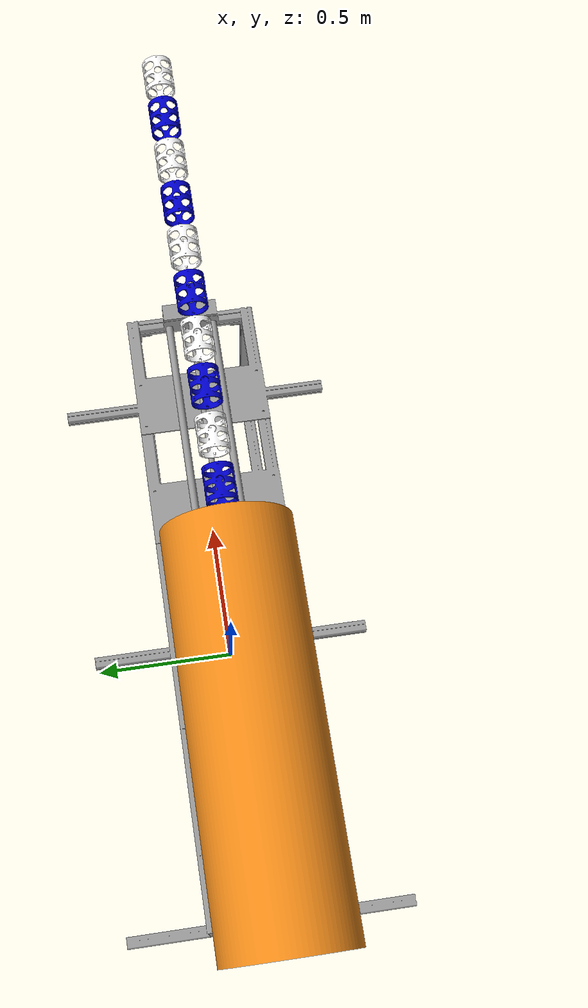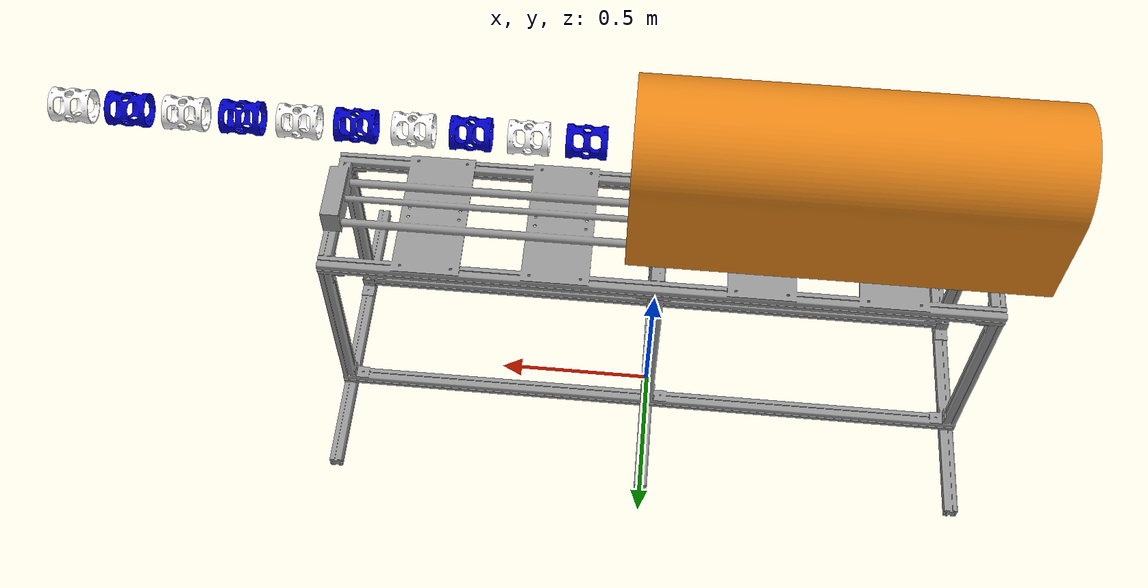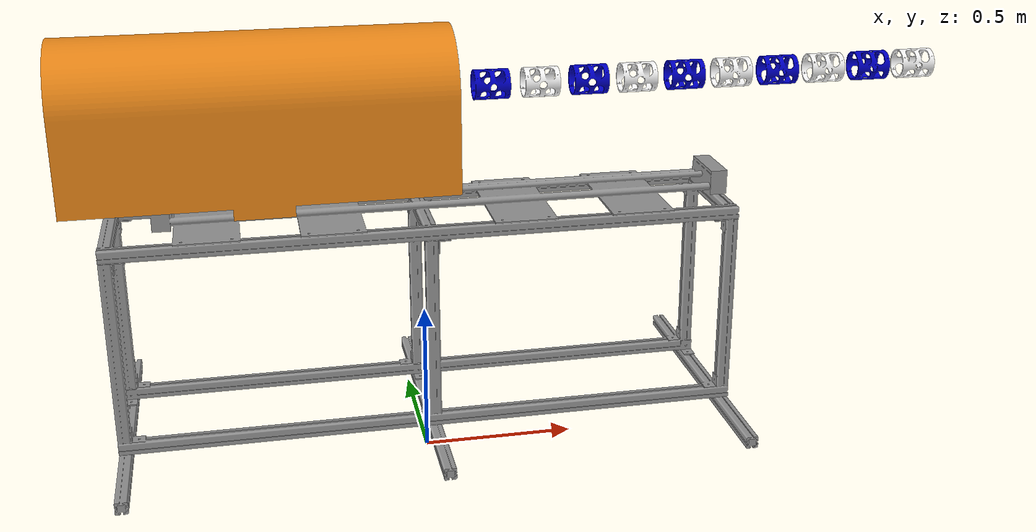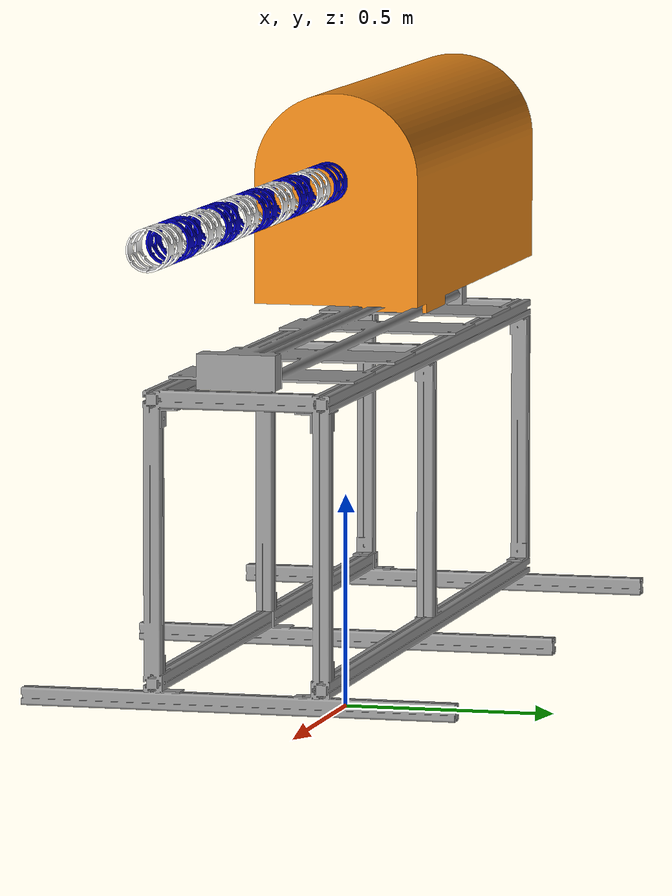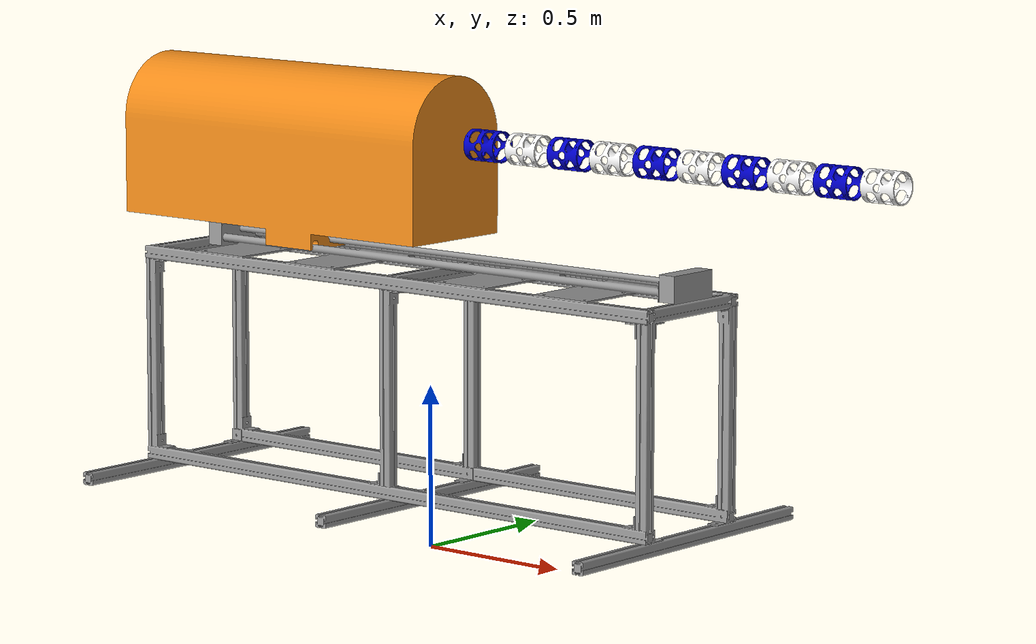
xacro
<?xml version="1.0"?>
<robot name="snake_10" xmlns:xacro="http://www.ros.org/wiki/xacro">

  <!-- properties -->
  <xacro:property name="cyl_radius" value="0.0475" />
  <xacro:property name="cyl_diameter" value="0.095" />
  <xacro:property name="cyl_height" value="0.12" />
  <xacro:property name="cyl_mass" value="0.125" /> <!-- in kg-->
  <xacro:property name="rev_axisY" value="0 1 0" />
  <xacro:property name="rev_axisZ" value="0 0 1" />
  <xacro:property name="deg2rad" value="0.01745329251994329577"/>
  <xacro:property name="Deg90Rad" value="1.57079632679"/>

  <macro name="cylinder_inertia" params="mass">
  <origin xyz="0 0 0" rpy="0 0 0"/>
    <inertia ixx="0.0741666666667" ixy="0.0" ixz="0.0" iyy="0.0585416666667" iyz="0.0" izz="0.0260416666667"/>
  </macro>

  <material name="blue">
    <color rgba="0 0 0.8 1"/>
  </material>
  <material name="black">
    <color rgba="0 0 0 1"/>
  </material>
  <material name="white">
    <color rgba="1 1 1 1"/>
  </material>
    <material name="red">
    <color rgba="1 0 0 1"/>
  </material>

  <xacro:macro name="transmission_block" params="joint_name">
	  <transmission name="tran1">
	    <type>transmission_interface/SimpleTransmission</type>
	    <joint name="${joint_name}">
	      <hardwareInterface>hardware_interface/PositionJointInterface</hardwareInterface>
	    </joint>
	    <actuator name="motor_${joint_name}">
	      <hardwareInterface>hardware_interface/PositionJointInterface</hardwareInterface>
	      <mechanicalReduction>1</mechanicalReduction>
	    </actuator>
	  </transmission>
   </xacro:macro>

<xacro:macro name="cyl" params="num material">
     <!-- params : number color revAxis { Y , Z } -->
    <link name="link_${num}">
      <visual>

        <origin rpy="0.0 0.0 0.0" xyz="${-cyl_radius} 0.024 ${-cyl_radius}"/>
        <geometry>
          <mesh filename="package://robot_snake_simulation/meshes/link_2.STL"/>
        </geometry>
        <material name="${material}" />
      </visual>

      <collision>
        <origin rpy="0.0 0.0 0.0" xyz="${-cyl_radius} 0.024 ${-cyl_radius}"/>
        <geometry>
          <mesh filename="package://robot_snake_simulation/meshes/link_2.STL"/>
        </geometry>
      </collision>
      <inertial>
        <mass value="${cyl_mass}" />
        <inertia ixx="0.4" ixy="0.0" ixz="0.0" iyy="0.4" iyz="0.0" izz="0.2"/>
      </inertial>
    </link>

  </xacro:macro>

 <xacro:macro name="attachjoint" params="parent child rev">
  <joint name="joint${child}" type="continuous">
    <parent link="link_${parent}"/>
    <child link="link_${child}"/>
    <origin xyz="0.0 0.16 0.0" rpy="0.0 0.0 0.0" />
    <axis xyz="${rev}" />
    <dynamics damping="0.7"/>
  </joint>
 </xacro:macro>

<link name="world"/>

<link name="base_link" >
  <visual>
    <origin rpy="1.57079632679 0 3.14159265359" xyz="1 -0.5 -0.36"/>
    <geometry>
      <mesh filename="package://robot_snake_simulation/meshes/base.STL"/>
    </geometry>
  </visual>
  <collision>
    <geometry>
      <box size="2 1 0.72"/>
    </geometry>
  </collision>
  <inertial>
    <origin xyz="0 0 0" rpy="0 0 0"/>
    <mass value="100000" />
    <inertia ixx="100000" ixy="0.0" ixz="0.0" iyy="100000" iyz="0.0" izz="100000"/>
  </inertial>
</link>

    <link name="arc" >
      <visual>
        <origin rpy="0 0 0" xyz="-0.6 -0.195 -0.3175"/>
        <geometry>
          <mesh filename="package://robot_snake_simulation/meshes/arc.STL"/>
        </geometry>
      </visual>
    <collision>
    <origin rpy="0 0 0" xyz="0 0 0"/>
      <geometry>
        <box size="1.2 0.3 0.3"/>
      </geometry>
    </collision>
    <inertial>
      <origin xyz="0 0 0" rpy="0 0 0"/>
      <mass value="0.2" />
      <inertia ixx="0.0741666666667" ixy="0.0" ixz="0.0" iyy="0.0585416666667" iyz="0.0" izz="0.0260416666667"/>
   </inertial>
  </link>

  <xacro:cyl num="1"  material="blue" />
  <xacro:cyl num="2"  material="white" />
  <xacro:cyl num="3"  material="blue" />
  <xacro:cyl num="4"  material="white"/>
  <xacro:cyl num="5"  material="blue" />
  <xacro:cyl num="6"  material="white" />
  <xacro:cyl num="7"  material="blue" />
  <xacro:cyl num="8"  material="white" />
  <xacro:cyl num="9"  material="blue" />
  <xacro:cyl num="10" material="white" />

  <joint name="fixed" type="fixed">
    <parent link="world"/>
    <child link="base_link"/>
    <origin xyz="0.0 0.0 0.5" rpy="0 0 0" />
  </joint>

  <joint name="linear1" type="prismatic">
    <parent link="base_link"/>
    <child link="arc"/>
    <limit effort="0" lower="0" upper="2" velocity="0.5"/>
    <axis xyz="1 0 0" />
    <origin xyz="-0.5 0 ${0.7365-0.03175}" rpy="0 0 0" />
        <dynamics damping="0.7"/>
  </joint>

  <joint name="joint1" type="continuous">
    <parent link="arc"/>
    <child link="link_1"/>

    <origin xyz="0.648 0.0 ${cyl_radius}" rpy="0.0 0.0 ${-Deg90Rad}" />
    <axis xyz="0 0 1" />
    <dynamics damping="0.7"/>
  </joint>

<xacro:attachjoint parent="1"  child="2" rev="0 0 1" />
<xacro:attachjoint parent="2"  child="3" rev="0 0 1" />
<xacro:attachjoint parent="3"  child="4" rev="0 0 1" />
<xacro:attachjoint parent="4"  child="5" rev="0 0 1" />
<xacro:attachjoint parent="5"  child="6" rev="0 0 1" />
<xacro:attachjoint parent="6"  child="7" rev="0 0 1" />
<xacro:attachjoint parent="7"  child="8" rev="0 0 1" />
<xacro:attachjoint parent="8"  child="9" rev="0 0 1" />
<xacro:attachjoint parent="9"  child="10" rev="0 0 1" />

<gazebo reference="base_link">
<material>Gazebo/Gray</material>
</gazebo>
<gazebo reference="arc">
<material>Gazebo/Orange</material>
</gazebo>
<gazebo reference="link_1">
<material>Gazebo/White</material>
</gazebo>
<gazebo reference="link_2">
<material>Gazebo/Blue</material>
</gazebo>
<gazebo reference="link_3">
<material>Gazebo/White</material>
</gazebo>
<gazebo reference="link_4">
<material>Gazebo/Blue</material>
</gazebo>
<gazebo reference="link_5">
<material>Gazebo/White</material>
</gazebo>
<gazebo reference="link_6">
<material>Gazebo/Blue</material>
</gazebo>
<gazebo reference="link_7">
<material>Gazebo/White</material>
</gazebo>
<gazebo reference="link_8">
<material>Gazebo/Blue</material>
</gazebo>
<gazebo reference="link_9">
<material>Gazebo/White</material>
</gazebo>
<gazebo reference="link_10">
<material>Gazebo/Blue</material>
</gazebo>

  <!-- Transmissions for ROS Control -->
<transmission name="linear1">
  <type>transmission_interface/SimpleTransmission</type>
  <joint name="linear1">
    <hardwareInterface>hardware_interface/PositionJointInterface</hardwareInterface>
  </joint>
  <actuator name="motor_0">
	  <hardwareInterface>hardware_interface/PositionJointInterface</hardwareInterface>
	  <mechanicalReduction>1</mechanicalReduction>
	</actuator>
</transmission>

   <xacro:transmission_block joint_name="joint1"/>
   <xacro:transmission_block joint_name="joint2"/>
   <xacro:transmission_block joint_name="joint3"/>
   <xacro:transmission_block joint_name="joint4"/>
   <xacro:transmission_block joint_name="joint5"/>
   <xacro:transmission_block joint_name="joint6"/>
   <xacro:transmission_block joint_name="joint7"/>
   <xacro:transmission_block joint_name="joint8"/>
   <xacro:transmission_block joint_name="joint9"/>
   <xacro:transmission_block joint_name="joint10"/>

  <!-- ros_control plugin -->
  <gazebo>
    <plugin name="gazebo_ros_control" filename="libgazebo_ros_control.so">
      <robotNamespace>/snake_10</robotNamespace>
      <legacyModeNS>true</legacyModeNS>
    </plugin>
  </gazebo>
  <!-- Define RGB-D sensor -->
</robot>
